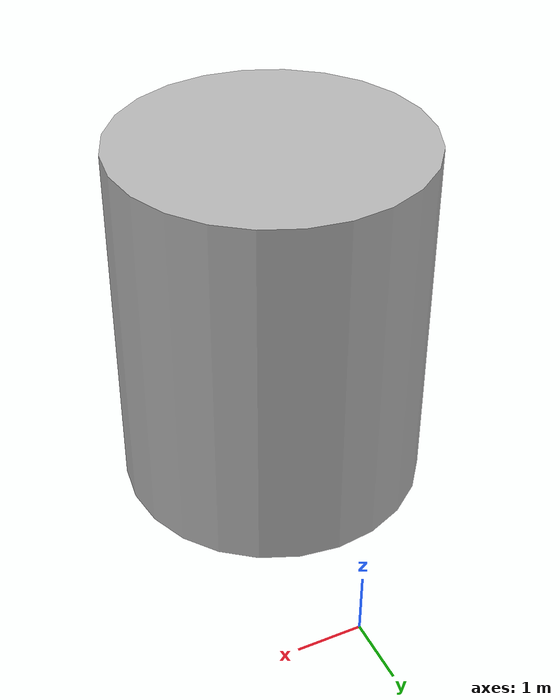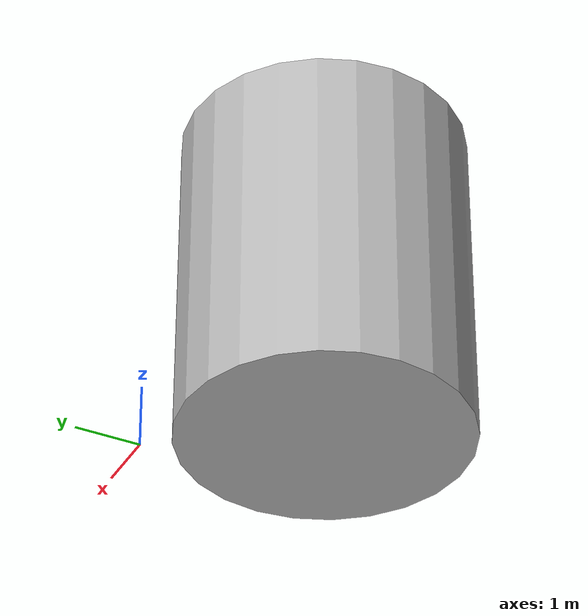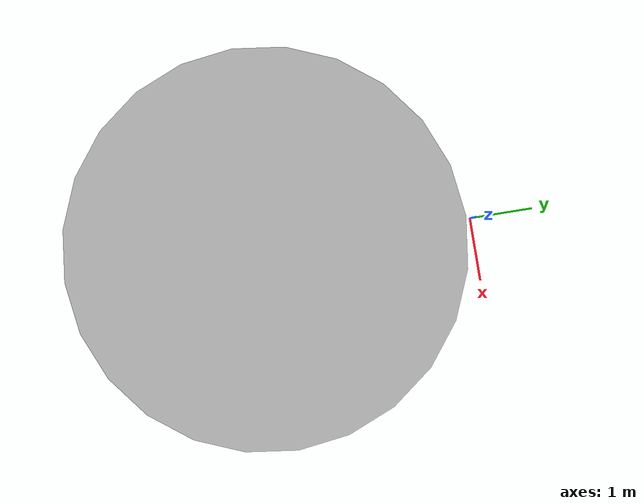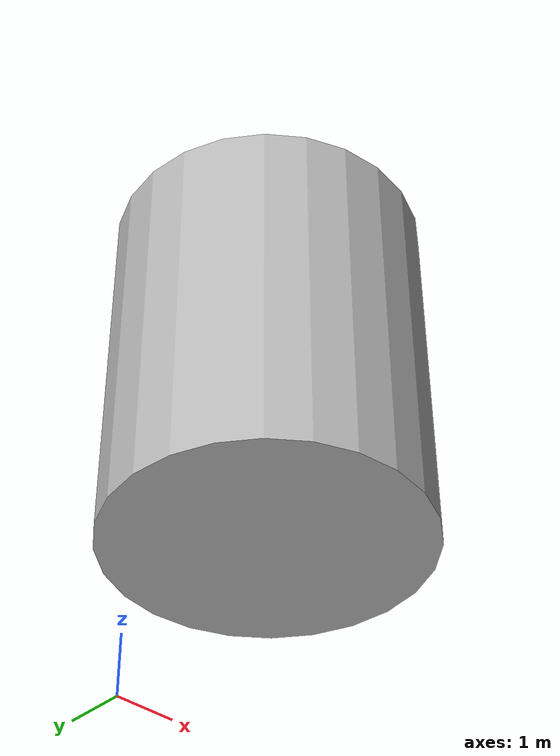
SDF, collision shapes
<?xml version="1.0" encoding="utf-8"?>
<sdf version='1.9'>
    <model name='Balloon'>
      <pose>0 -3 1 0 -0 0</pose>
      <static>true</static>
      <link name='Balloon/base_link'>
        <pose>0 0 0 0 -0 0</pose>
        <inertial>
          <pose>0 0 0 0 -0 0</pose>
          <mass>1.5</mass>
          <inertia>
            <ixx>0.034756299999999997</ixx>
            <ixy>0</ixy>
            <ixz>0</ixz>
            <iyy>0.070000000000000007</iyy>
            <iyz>0</iyz>
            <izz>0.097699999999999995</izz>
          </inertia>
        </inertial>
        <collision name='Balloon/base_link_inertia_collision'>
          <pose>0 0 2.75 0 -0 0</pose>
          <geometry>
            <cylinder>
              <radius>2.3</radius>
              <length>5.5</length>
            </cylinder>
          </geometry>
          <surface>
            <friction>
              <ode/>
            </friction>
            <bounce/>
            <contact/>
          </surface>
        </collision>
        <visual name='Balloon/base_link_inertia_visual'>
          <pose>0 0 0 0 -0 0</pose>
          <geometry>
            <mesh>
              <scale>0.5 0.5 0.5</scale>
              <uri>file://resources/balloon/balloon.dae</uri>
            </mesh>
          </geometry>
        </visual>
        <enable_wind>true</enable_wind>
      </link>
      <link name='Balloon/rotor_0'>
        <pose>0.13 -0.22 0.023 -0 -0 -0</pose>
        <inertial>
          <pose>0 0 0 0 -0 0</pose>
          <mass>0.0050000000000000001</mass>
          <inertia>
            <ixx>9.7499999999999998e-07</ixx>
            <ixy>0</ixy>
            <ixz>0</ixz>
            <iyy>4.1704099999999999e-05</iyy>
            <iyz>0</iyz>
            <izz>4.2604100000000001e-05</izz>
          </inertia>
        </inertial>
        <collision name='Balloon/rotor_0_collision'>
          <pose>0 0 0 0 -0 0</pose>
          <geometry>
            <cylinder>
              <length>0.0050000000000000001</length>
              <radius>0.10000000000000001</radius>
            </cylinder>
          </geometry>
          <surface>
            <contact>
              <ode/>
            </contact>
            <friction>
              <ode/>
            </friction>
            <bounce/>
          </surface>
        </collision>
        <gravity>true</gravity>
        <velocity_decay/>
        <enable_wind>true</enable_wind>
      </link>
      <joint name='Balloon/rotor_0_joint' type='revolute'>
        <child>Balloon/rotor_0</child>
        <parent>Balloon/base_link</parent>
        <axis>
          <xyz>0 0 1</xyz>
          <limit>
            <lower>-10000000000000000</lower>
            <upper>10000000000000000</upper>
            <effort>inf</effort>
            <velocity>inf</velocity>
            <stiffness>100000000</stiffness>
            <dissipation>1</dissipation>
          </limit>
          <dynamics>
            <spring_reference>0</spring_reference>
            <spring_stiffness>0</spring_stiffness>
            <damping>0</damping>
            <friction>0</friction>
          </dynamics>
        </axis>
        <pose>0 0 0 0 -0 0</pose>
      </joint>
      <link name='Balloon/rotor_1'>
        <pose>-0.13 0.2 0.023 -0 -0 -0</pose>
        <inertial>
          <pose>0 0 0 0 -0 0</pose>
          <mass>0.0050000000000000001</mass>
          <inertia>
            <ixx>9.7499999999999998e-07</ixx>
            <ixy>0</ixy>
            <ixz>0</ixz>
            <iyy>4.1704099999999999e-05</iyy>
            <iyz>0</iyz>
            <izz>4.2604100000000001e-05</izz>
          </inertia>
        </inertial>
        <collision name='Balloon/rotor_1_collision'>
          <pose>0 0 0 0 -0 0</pose>
          <geometry>
            <cylinder>
              <length>0.0050000000000000001</length>
              <radius>0.10000000000000001</radius>
            </cylinder>
          </geometry>
          <surface>
            <contact>
              <ode/>
            </contact>
            <friction>
              <ode/>
            </friction>
            <bounce/>
          </surface>
        </collision>
        <gravity>true</gravity>
        <velocity_decay/>
        <enable_wind>true</enable_wind>
      </link>
      <joint name='Balloon/rotor_1_joint' type='revolute'>
        <child>Balloon/rotor_1</child>
        <parent>Balloon/base_link</parent>
        <axis>
          <xyz>0 0 1</xyz>
          <limit>
            <lower>-10000000000000000</lower>
            <upper>10000000000000000</upper>
            <effort>inf</effort>
            <velocity>inf</velocity>
            <stiffness>100000000</stiffness>
            <dissipation>1</dissipation>
          </limit>
          <dynamics>
            <spring_reference>0</spring_reference>
            <spring_stiffness>0</spring_stiffness>
            <damping>0</damping>
            <friction>0</friction>
          </dynamics>
        </axis>
        <pose>0 0 0 0 -0 0</pose>
      </joint>
      <link name='Balloon/rotor_2'>
        <pose>0.13 0.22 0.023 -0 -0 -0</pose>
        <inertial>
          <pose>0 0 0 0 -0 0</pose>
          <mass>0.0050000000000000001</mass>
          <inertia>
            <ixx>9.7499999999999998e-07</ixx>
            <ixy>0</ixy>
            <ixz>0</ixz>
            <iyy>4.1704099999999999e-05</iyy>
            <iyz>0</iyz>
            <izz>4.2604100000000001e-05</izz>
          </inertia>
        </inertial>
        <collision name='Balloon/rotor_2_collision'>
          <pose>0 0 0 0 -0 0</pose>
          <geometry>
            <cylinder>
              <length>0.0050000000000000001</length>
              <radius>0.10000000000000001</radius>
            </cylinder>
          </geometry>
          <surface>
            <contact>
              <ode/>
            </contact>
            <friction>
              <ode/>
            </friction>
            <bounce/>
          </surface>
        </collision>
        <gravity>true</gravity>
        <velocity_decay/>
        <enable_wind>true</enable_wind>
      </link>
      <joint name='Balloon/rotor_2_joint' type='revolute'>
        <child>Balloon/rotor_2</child>
        <parent>Balloon/base_link</parent>
        <axis>
          <xyz>0 0 1</xyz>
          <limit>
            <lower>-10000000000000000</lower>
            <upper>10000000000000000</upper>
            <effort>inf</effort>
            <velocity>inf</velocity>
            <stiffness>100000000</stiffness>
            <dissipation>1</dissipation>
          </limit>
          <dynamics>
            <spring_reference>0</spring_reference>
            <spring_stiffness>0</spring_stiffness>
            <damping>0</damping>
            <friction>0</friction>
          </dynamics>
        </axis>
        <pose>0 0 0 0 -0 0</pose>
      </joint>
      <link name='Balloon/rotor_3'>
        <pose>-0.13 -0.2 0.023 -0 -0 -0</pose>
        <inertial>
          <pose>0 0 0 0 -0 0</pose>
          <mass>0.0050000000000000001</mass>
          <inertia>
            <ixx>9.7499999999999998e-07</ixx>
            <ixy>0</ixy>
            <ixz>0</ixz>
            <iyy>4.1704099999999999e-05</iyy>
            <iyz>0</iyz>
            <izz>4.2604100000000001e-05</izz>
          </inertia>
        </inertial>
        <collision name='Balloon/rotor_3_collision'>
          <pose>0 0 0 0 -0 0</pose>
          <geometry>
            <cylinder>
              <length>0.0050000000000000001</length>
              <radius>0.10000000000000001</radius>
            </cylinder>
          </geometry>
          <surface>
            <contact>
              <ode/>
            </contact>
            <friction>
              <ode/>
            </friction>
            <bounce/>
          </surface>
        </collision>
        <gravity>true</gravity>
        <velocity_decay/>
        <enable_wind>true</enable_wind>
      </link>
      <joint name='Balloon/rotor_3_joint' type='revolute'>
        <child>Balloon/rotor_3</child>
        <parent>Balloon/base_link</parent>
        <axis>
          <xyz>0 0 1</xyz>
          <limit>
            <lower>-10000000000000000</lower>
            <upper>10000000000000000</upper>
            <effort>inf</effort>
            <velocity>inf</velocity>
            <stiffness>100000000</stiffness>
            <dissipation>1</dissipation>
          </limit>
          <dynamics>
            <spring_reference>0</spring_reference>
            <spring_stiffness>0</spring_stiffness>
            <damping>0</damping>
            <friction>0</friction>
          </dynamics>
        </axis>
        <pose>0 0 0 0 -0 0</pose>
      </joint>
      <plugin name='ignition::gazebo::systems::MulticopterMotorModel' filename='ignition-gazebo-multicopter-motor-model-system'>
        <robotNamespace>Balloon</robotNamespace>
        <jointName>Balloon/rotor_0_joint</jointName>
        <linkName>Balloon/rotor_0</linkName>
        <turningDirection>ccw</turningDirection>
        <timeConstantUp>0.0125</timeConstantUp>
        <timeConstantDown>0.025</timeConstantDown>
        <maxRotVelocity>800.0</maxRotVelocity>
        <motorConstant>8.54858e-06</motorConstant>
        <momentConstant>0.016</momentConstant>
        <commandSubTopic>gazebo/command/motor_speed</commandSubTopic>
        <motorNumber>0</motorNumber>
        <rotorDragCoefficient>8.06428e-05</rotorDragCoefficient>
        <rollingMomentCoefficient>1e-06</rollingMomentCoefficient>
        <motorSpeedPubTopic>motor_speed/0</motorSpeedPubTopic>
        <rotorVelocitySlowdownSim>10</rotorVelocitySlowdownSim>
        <motorType>velocity</motorType>
      </plugin>
      <plugin name='ignition::gazebo::systems::MulticopterMotorModel' filename='ignition-gazebo-multicopter-motor-model-system'>
        <robotNamespace>Balloon</robotNamespace>
        <jointName>Balloon/rotor_1_joint</jointName>
        <linkName>Balloon/rotor_1</linkName>
        <turningDirection>ccw</turningDirection>
        <timeConstantUp>0.0125</timeConstantUp>
        <timeConstantDown>0.025</timeConstantDown>
        <maxRotVelocity>800.0</maxRotVelocity>
        <motorConstant>8.54858e-06</motorConstant>
        <momentConstant>0.016</momentConstant>
        <commandSubTopic>gazebo/command/motor_speed</commandSubTopic>
        <motorNumber>1</motorNumber>
        <rotorDragCoefficient>8.06428e-05</rotorDragCoefficient>
        <rollingMomentCoefficient>1e-06</rollingMomentCoefficient>
        <motorSpeedPubTopic>motor_speed/1</motorSpeedPubTopic>
        <rotorVelocitySlowdownSim>10</rotorVelocitySlowdownSim>
        <motorType>velocity</motorType>
      </plugin>
      <plugin name='ignition::gazebo::systems::MulticopterMotorModel' filename='ignition-gazebo-multicopter-motor-model-system'>
        <robotNamespace>Balloon</robotNamespace>
        <jointName>Balloon/rotor_2_joint</jointName>
        <linkName>Balloon/rotor_2</linkName>
        <turningDirection>cw</turningDirection>
        <timeConstantUp>0.0125</timeConstantUp>
        <timeConstantDown>0.025</timeConstantDown>
        <maxRotVelocity>800.0</maxRotVelocity>
        <motorConstant>8.54858e-06</motorConstant>
        <momentConstant>0.016</momentConstant>
        <commandSubTopic>gazebo/command/motor_speed</commandSubTopic>
        <motorNumber>2</motorNumber>
        <rotorDragCoefficient>8.06428e-05</rotorDragCoefficient>
        <rollingMomentCoefficient>1e-06</rollingMomentCoefficient>
        <motorSpeedPubTopic>motor_speed/2</motorSpeedPubTopic>
        <rotorVelocitySlowdownSim>10</rotorVelocitySlowdownSim>
        <motorType>velocity</motorType>
      </plugin>
      <plugin name='ignition::gazebo::systems::MulticopterMotorModel' filename='ignition-gazebo-multicopter-motor-model-system'>
        <robotNamespace>Balloon</robotNamespace>
        <jointName>Balloon/rotor_3_joint</jointName>
        <linkName>Balloon/rotor_3</linkName>
        <turningDirection>cw</turningDirection>
        <timeConstantUp>0.0125</timeConstantUp>
        <timeConstantDown>0.025</timeConstantDown>
        <maxRotVelocity>800.0</maxRotVelocity>
        <motorConstant>8.54858e-06</motorConstant>
        <momentConstant>0.016</momentConstant>
        <commandSubTopic>gazebo/command/motor_speed</commandSubTopic>
        <motorNumber>3</motorNumber>
        <rotorDragCoefficient>8.06428e-05</rotorDragCoefficient>
        <rollingMomentCoefficient>1e-06</rollingMomentCoefficient>
        <motorSpeedPubTopic>motor_speed/3</motorSpeedPubTopic>
        <rotorVelocitySlowdownSim>10</rotorVelocitySlowdownSim>
        <motorType>velocity</motorType>
      </plugin>
      <plugin name='ignition::gazebo::systems::MulticopterVelocityControl' filename='ignition-gazebo-multicopter-control-system'>
        <robotNamespace>Balloon</robotNamespace>
        <enableSubTopic>enable</enableSubTopic>
        <comLinkName>Balloon/base_link</comLinkName>
        <velocityGain>2.7 2.7 2.7</velocityGain>
        <attitudeGain>2 3 0.15</attitudeGain>
        <angularRateGain>0.4 0.52 0.18</angularRateGain>
        <maximumLinearAcceleration>2 2 2</maximumLinearAcceleration>
        <maximumLinearVelocity>1 1 1</maximumLinearVelocity>
        <rotorConfiguration>
          <rotor>
            <jointName>Balloon/rotor_0_joint</jointName>
            <forceConstant>8.54858e-06</forceConstant>
            <momentConstant>0.016</momentConstant>
            <direction>1</direction>
          </rotor>
          <rotor>
            <jointName>Balloon/rotor_1_joint</jointName>
            <forceConstant>8.54858e-06</forceConstant>
            <momentConstant>0.016</momentConstant>
            <direction>1</direction>
          </rotor>
          <rotor>
            <jointName>Balloon/rotor_2_joint</jointName>
            <forceConstant>8.54858e-06</forceConstant>
            <momentConstant>0.016</momentConstant>
            <direction>-1</direction>
          </rotor>
          <rotor>
            <jointName>Balloon/rotor_3_joint</jointName>
            <forceConstant>8.54858e-06</forceConstant>
            <momentConstant>0.016</momentConstant>
            <direction>-1</direction>
          </rotor>
        </rotorConfiguration>
      </plugin>
      <plugin name='ignition::gazebo::systems::OdometryPublisher' filename='ignition-gazebo-odometry-publisher-system'>
        <odom_topic>/Balloon/odometry</odom_topic>
        <dimensions>3</dimensions>
      </plugin>
      <static>true</static>
      <self_collide>false</self_collide>
    </model>
</sdf>
